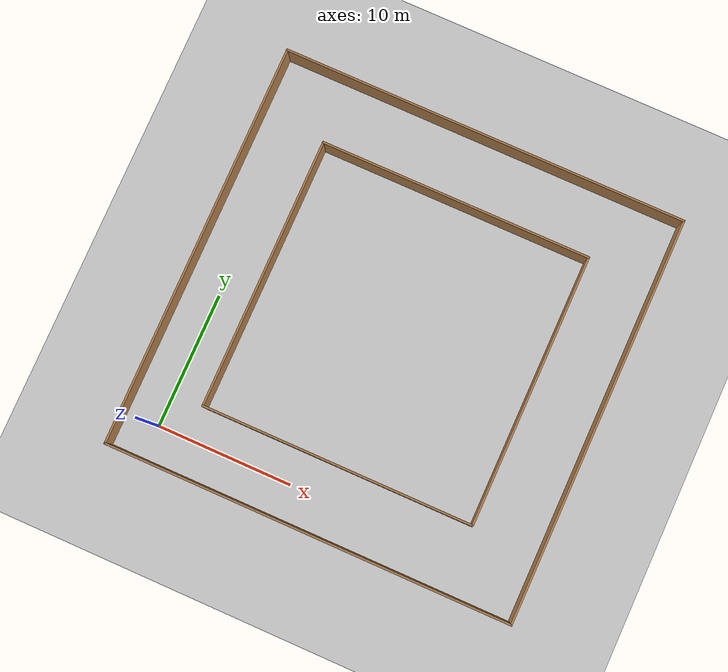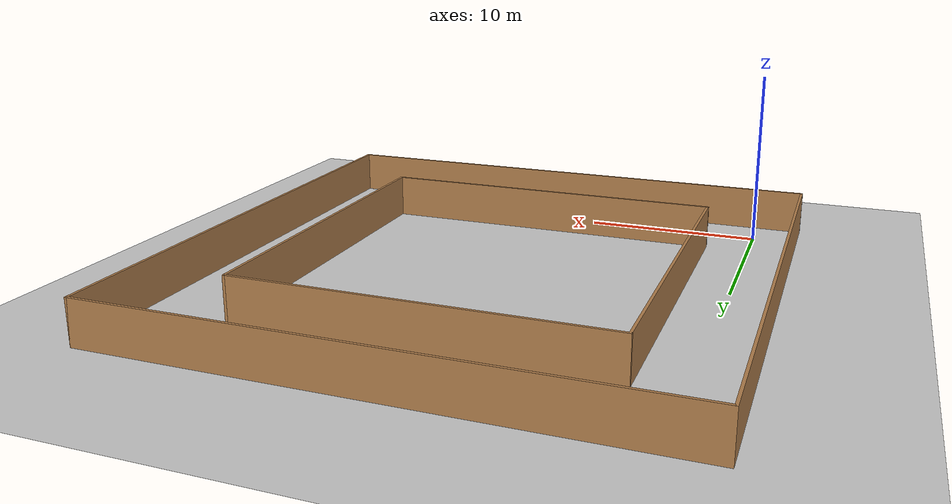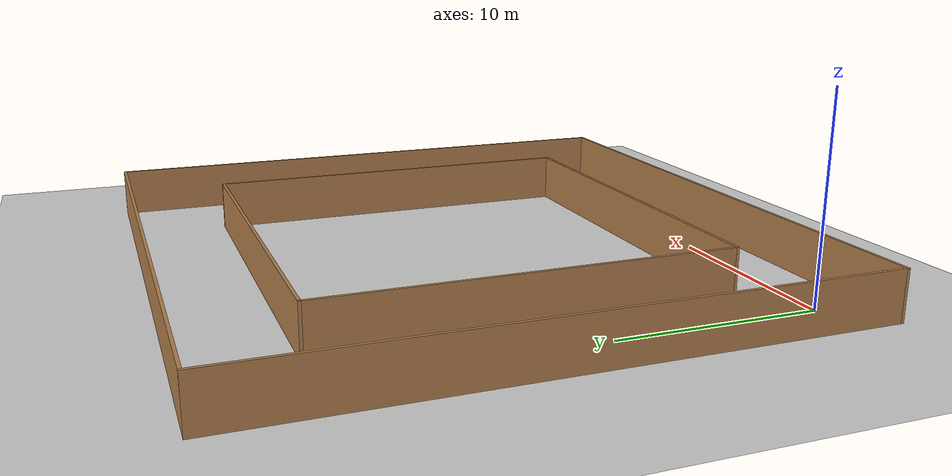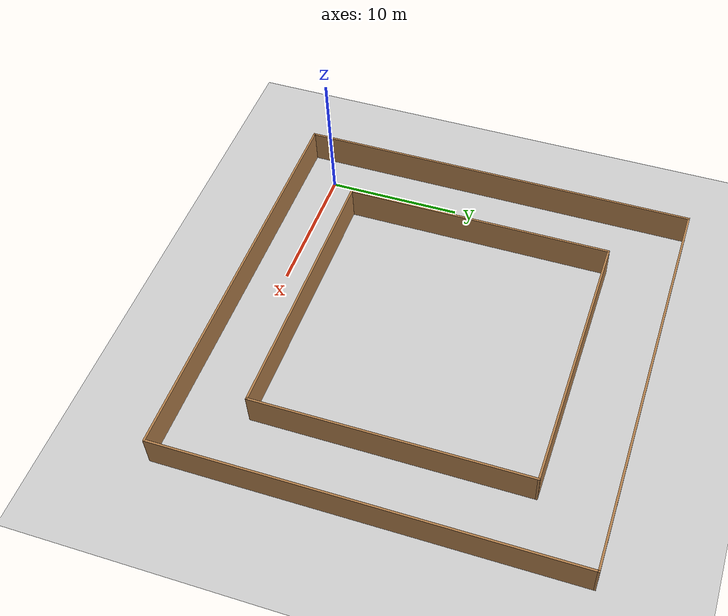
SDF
<sdf version="1.7">
 <world name="default">
  <light name="sun" type="directional">
   <pose>0 0 10 0 -0 0</pose>
   <diffuse>0.8 0.8 0.8 1</diffuse>
   <specular>0.2 0.2 0.2 1</specular>
   <attenuation>
    <range>1000</range>
    <constant>0.9</constant>
    <linear>0.01</linear>
    <quadratic>0.001</quadratic>
   </attenuation>
   <direction>-0.5 0.1 -0.9</direction>
   <spot><inner_angle>0</inner_angle><outer_angle>0</outer_angle><falloff>0</falloff></spot>
  </light>
  <model name="ground_plane">
   <static>1</static>
   <link name="link">
    <collision name="collision">
     <geometry><plane><normal>0 0 1</normal><size>100 100</size></plane></geometry>
     <surface>
      <contact><collide_bitmask>65535</collide_bitmask></contact>
      <friction><ode><mu>100</mu><mu2>50</mu2></ode></friction>
     </surface>
    </collision>
    <visual name="visual">
     <cast_shadows>0</cast_shadows>
     <geometry><plane><normal>0 0 1</normal><size>100 100</size></plane></geometry>
     <material>
      <script><uri>file://media/materials/scripts/gazebo.material</uri><name>Gazebo/Grey</name></script>
     </material>
    </visual>
   </link>
  </model>
  <gravity>0 0 -9.8</gravity>
  <magnetic_field>6e-06 2.3e-05 -4.2e-05</magnetic_field>
  <atmosphere type="adiabatic"/>
  <physics type="ode">
   <max_step_size>0.001</max_step_size>
   <real_time_factor>1</real_time_factor>
   <real_time_update_rate>1000</real_time_update_rate>
  </physics>
  <scene><ambient>0.4 0.4 0.4 1</ambient><background>0.7 0.7 0.7 1</background><shadows>1</shadows></scene>
  <spherical_coordinates>
   <surface_model>EARTH_WGS84</surface_model>
   <latitude_deg>0</latitude_deg>
   <longitude_deg>0</longitude_deg>
   <elevation>0</elevation>
   <heading_deg>0</heading_deg>
  </spherical_coordinates>
  <model name="corredor_fechado">
   <pose>12.5 12.5 0 0 -0 0</pose>
   <link name="Wall_35">
    <collision name="Wall_35_Collision">
     <geometry><box><size>20.15 0.15 2.5</size></box></geometry>
     <pose>0 0 1.25 0 -0 0</pose>
    </collision>
    <visual name="Wall_35_Visual">
     <pose>0 0 1.25 0 -0 0</pose>
     <geometry><box><size>20.15 0.15 2.5</size></box></geometry>
     <material>
      <script><uri>file://media/materials/scripts/gazebo.material</uri><name>Gazebo/Wood</name></script>
      <ambient>1 1 1 1</ambient>
     </material>
     <meta><layer>0</layer></meta>
    </visual>
    <pose>-0 -10 0 0 -0 0</pose>
   </link>
   <link name="Wall_37">
    <collision name="Wall_37_Collision">
     <geometry><box><size>20.15 0.15 2.5</size></box></geometry>
     <pose>0 0 1.25 0 -0 0</pose>
    </collision>
    <visual name="Wall_37_Visual">
     <pose>0 0 1.25 0 -0 0</pose>
     <geometry><box><size>20.15 0.15 2.5</size></box></geometry>
     <material>
      <script><uri>file://media/materials/scripts/gazebo.material</uri><name>Gazebo/Wood</name></script>
      <ambient>1 1 1 1</ambient>
     </material>
     <meta><layer>0</layer></meta>
    </visual>
    <pose>10 0 0 0 -0 1.5708</pose>
   </link>
   <link name="Wall_39">
    <collision name="Wall_39_Collision">
     <geometry><box><size>20.15 0.15 2.5</size></box></geometry>
     <pose>0 0 1.25 0 -0 0</pose>
    </collision>
    <visual name="Wall_39_Visual">
     <pose>0 0 1.25 0 -0 0</pose>
     <geometry><box><size>20.15 0.15 2.5</size></box></geometry>
     <material>
      <script><uri>file://media/materials/scripts/gazebo.material</uri><name>Gazebo/Wood</name></script>
      <ambient>1 1 1 1</ambient>
     </material>
     <meta><layer>0</layer></meta>
    </visual>
    <pose>-0 10 0 0 -0 3.14159</pose>
   </link>
   <link name="Wall_41">
    <collision name="Wall_41_Collision">
     <geometry><box><size>20 0.15 2.5</size></box></geometry>
     <pose>0 0 1.25 0 -0 0</pose>
    </collision>
    <visual name="Wall_41_Visual">
     <pose>0 0 1.25 0 -0 0</pose>
     <geometry><box><size>20 0.15 2.5</size></box></geometry>
     <material>
      <script><uri>file://media/materials/scripts/gazebo.material</uri><name>Gazebo/Wood</name></script>
      <ambient>1 1 1 1</ambient>
     </material>
     <meta><layer>0</layer></meta>
    </visual>
    <pose>-10 0.075 0 0 -0 -1.5708</pose>
   </link>
   <link name="Wall_44">
    <collision name="Wall_44_Collision">
     <geometry><box><size>30.15 0.15 2.5</size></box></geometry>
     <pose>0 0 1.25 0 -0 0</pose>
    </collision>
    <visual name="Wall_44_Visual">
     <pose>0 0 1.25 0 -0 0</pose>
     <geometry><box><size>30.15 0.15 2.5</size></box></geometry>
     <material>
      <script><uri>file://media/materials/scripts/gazebo.material</uri><name>Gazebo/Wood</name></script>
      <ambient>1 1 1 1</ambient>
     </material>
     <meta><layer>0</layer></meta>
    </visual>
    <pose>-0 -15 0 0 -0 0</pose>
   </link>
   <link name="Wall_46">
    <collision name="Wall_46_Collision">
     <geometry><box><size>30.15 0.15 2.5</size></box></geometry>
     <pose>0 0 1.25 0 -0 0</pose>
    </collision>
    <visual name="Wall_46_Visual">
     <pose>0 0 1.25 0 -0 0</pose>
     <geometry><box><size>30.15 0.15 2.5</size></box></geometry>
     <material>
      <script><uri>file://media/materials/scripts/gazebo.material</uri><name>Gazebo/Wood</name></script>
      <ambient>1 1 1 1</ambient>
     </material>
     <meta><layer>0</layer></meta>
    </visual>
    <pose>15 0 0 0 -0 1.5708</pose>
   </link>
   <link name="Wall_49">
    <collision name="Wall_49_Collision">
     <geometry><box><size>30.15 0.15 2.5</size></box></geometry>
     <pose>0 0 1.25 0 -0 0</pose>
    </collision>
    <visual name="Wall_49_Visual">
     <pose>0 0 1.25 0 -0 0</pose>
     <geometry><box><size>30.15 0.15 2.5</size></box></geometry>
     <material>
      <script><uri>file://media/materials/scripts/gazebo.material</uri><name>Gazebo/Wood</name></script>
      <ambient>1 1 1 1</ambient>
     </material>
     <meta><layer>0</layer></meta>
    </visual>
    <pose>-15 0 0 0 -0 1.5708</pose>
   </link>
   <link name="Wall_51">
    <collision name="Wall_51_Collision">
     <geometry><box><size>30.15 0.15 2.5</size></box></geometry>
     <pose>0 0 1.25 0 -0 0</pose>
    </collision>
    <visual name="Wall_51_Visual">
     <pose>0 0 1.25 0 -0 0</pose>
     <geometry><box><size>30.15 0.15 2.5</size></box></geometry>
     <material>
      <script><uri>file://media/materials/scripts/gazebo.material</uri><name>Gazebo/Wood</name></script>
      <ambient>1 1 1 1</ambient>
     </material>
     <meta><layer>0</layer></meta>
    </visual>
    <pose>-0 15 0 0 -0 0</pose>
   </link>
   <static>1</static>
  </model>
 </world>
</sdf>
